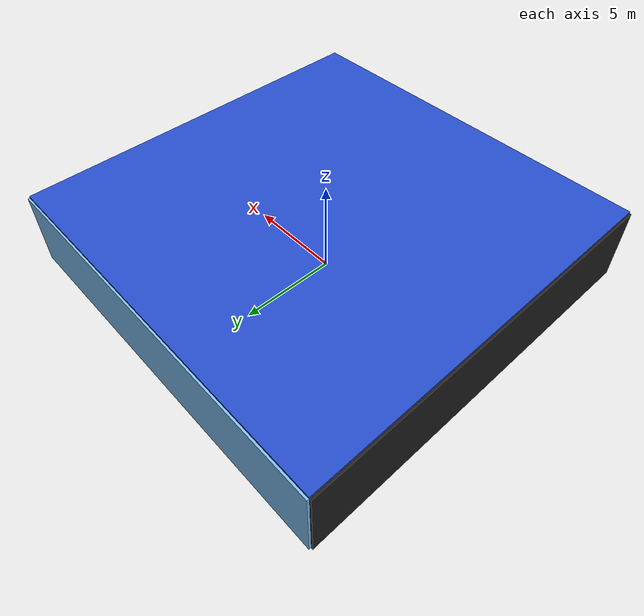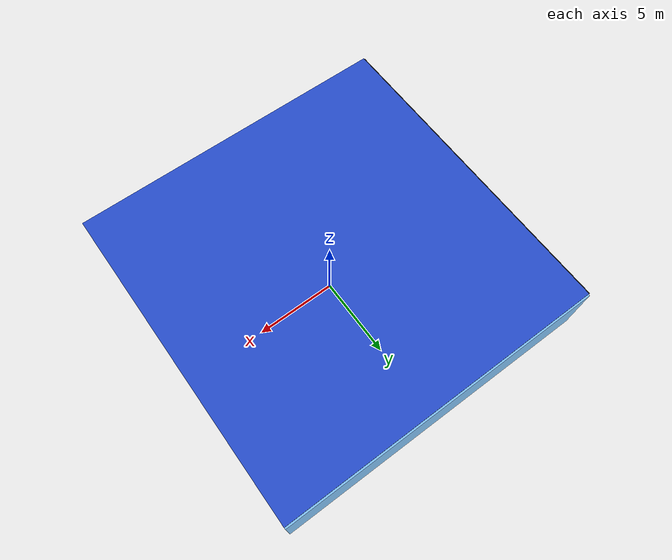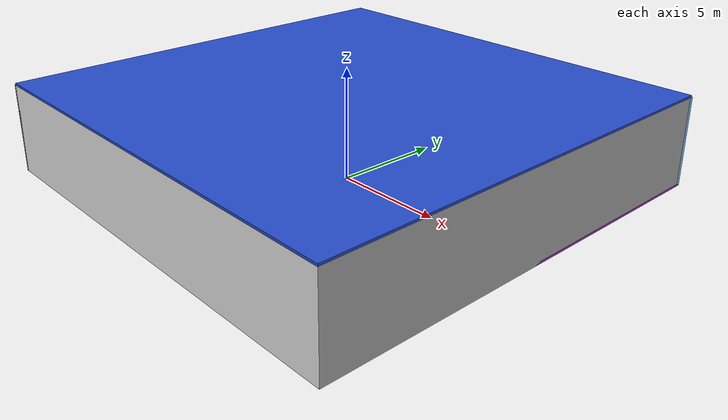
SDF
<sdf version="1.4">
 <world name="default">
  <physics type="ode">
   <max_step_size>0.001</max_step_size>
   <real_time_factor>1</real_time_factor>
   <real_time_update_rate>1000</real_time_update_rate>
   <gravity>0 0 -9.8</gravity>
  </physics>
  <scene><ambient>0.4 0.4 0.4 1</ambient><background>0.7 0.7 0.7 1</background><shadows>1</shadows></scene>
  <model name="Surrounding">
   <static>1</static>
   <link name="Ceiling">
    <collision name="Ceiling_Collision"><geometry><box><size>20 20 0.1</size></box></geometry></collision>
    <visual name="Ceiling_Visual">
     <geometry><box><size>20 20 0.1</size></box></geometry>
     <material>
      <script><uri>file://media/materials/scripts/gazebo.material</uri><name>Gazebo/BlueLaser</name></script>
     </material>
    </visual>
    <pose>0 0 4.05 0 0 0</pose>
   </link>
   <link name="Wall_South">
    <collision name="Wall_South_Collision">
     <geometry><box><size>20 0 4</size></box></geometry>
     <pose>0 0 2 0 -0 0</pose>
    </collision>
    <visual name="Wall_South_Visual">
     <pose>0 0 2 0 -0 0</pose>
     <geometry><box><size>20 0 4</size></box></geometry>
     <material>
      <script><uri>file://media/materials/scripts/gazebo.material</uri><name>Gazebo/White</name></script>
     </material>
    </visual>
    <velocity_decay><linear>0</linear><angular>0</angular></velocity_decay>
    <pose>0 -10 0 0 -0 0</pose>
   </link>
   <link name="Wall_East">
    <collision name="Wall_21_Collision">
     <geometry><box><size>20 0 4</size></box></geometry>
     <pose>0 0 2 0 -0 0</pose>
    </collision>
    <visual name="Wall_21_Visual">
     <pose>0 0 2 0 -0 0</pose>
     <geometry><box><size>20 0 4</size></box></geometry>
     <material>
      <script><uri>file://media/materials/scripts/gazebo.material</uri><name>Gazebo/Pioneer2Body</name></script>
     </material>
    </visual>
    <velocity_decay><linear>0</linear><angular>0</angular></velocity_decay>
    <pose>10 0 0 0 -0 1.5708</pose>
   </link>
   <link name="Wall_North">
    <collision name="Wall_22_Collision">
     <geometry><box><size>20 0.2 4</size></box></geometry>
     <pose>0 0 2 0 -0 0</pose>
    </collision>
    <visual name="Wall_22_Visual">
     <pose>0 0 2 0 -0 0</pose>
     <geometry><box><size>20 0.2 4</size></box></geometry>
     <material>
      <script><uri>file://media/materials/scripts/gazebo.material</uri><name>Gazebo/SkyBlue</name></script>
     </material>
    </visual>
    <velocity_decay><linear>0</linear><angular>0</angular></velocity_decay>
    <pose>0 10 0 0 -0 0</pose>
   </link>
   <link name="Wall_West">
    <collision name="Wall_23_Collision">
     <geometry><box><size>20 0.2 4</size></box></geometry>
     <pose>0 0 2 0 -0 0</pose>
    </collision>
    <visual name="Wall_23_Visual">
     <pose>0 0 2 0 -0 0</pose>
     <geometry><box><size>20 0.2 4</size></box></geometry>
     <material>
      <script><uri>file://media/materials/scripts/gazebo.material</uri><name>Gazebo/Black</name></script>
     </material>
    </visual>
    <velocity_decay><linear>0</linear><angular>0</angular></velocity_decay>
    <pose>-10 0 0 0 0 -1.5708</pose>
   </link>
   <link name="Ground_link">
    <collision name="collision">
     <pose>0 0 .05 0 -0 0</pose>
     <geometry><box><size>20 20 0.1</size></box></geometry>
    </collision>
    <visual name="visual">
     <pose>0 0 .05 0 -0 0</pose>
     <geometry><box><size>20 20 0.1</size></box></geometry>
     <material>
      <script><uri>file://media/materials/scripts/gazebo.material</uri><name>Gazebo/PurpleGlow</name></script>
     </material>
    </visual>
   </link>
   <static>1</static>
  </model>
  <spherical_coordinates>
   <surface_model>EARTH_WGS84</surface_model>
   <latitude_deg>0</latitude_deg>
   <longitude_deg>0</longitude_deg>
   <elevation>0</elevation>
   <heading_deg>0</heading_deg>
  </spherical_coordinates>
  <light name="lightball_0" type="diffuse">
   <diffuse>0.8 0.8 0.8 1</diffuse>
   <specular>0.2 0.2 0.2 1</specular>
   <attenuation>
    <range>100</range>
    <constant>0.7</constant>
    <linear>0.01</linear>
    <quadratic>0.001</quadratic>
   </attenuation>
   <direction>-0.5 0.1 -0.9</direction>
   <pose>0.839377637789 -2.30102506127 2.38728281746 0 0 0</pose>
  </light>
  <light name="lightball_1" type="diffuse">
   <diffuse>0.8 0.8 0.8 1</diffuse>
   <specular>0.2 0.2 0.2 1</specular>
   <attenuation>
    <range>100</range>
    <constant>0.7</constant>
    <linear>0.01</linear>
    <quadratic>0.001</quadratic>
   </attenuation>
   <direction>-0.5 0.1 -0.9</direction>
   <pose>-5.2990431176 8.31423975938 0.66995436483 0 0 0</pose>
  </light>
  <light name="lightball_2" type="diffuse">
   <diffuse>0.8 0.8 0.8 1</diffuse>
   <specular>0.2 0.2 0.2 1</specular>
   <attenuation>
    <range>100</range>
    <constant>0.7</constant>
    <linear>0.01</linear>
    <quadratic>0.001</quadratic>
   </attenuation>
   <direction>-0.5 0.1 -0.9</direction>
   <pose>5.20678671212 3.78282296999 1.11743053947 0 0 0</pose>
  </light>
  <light name="lightball_3" type="diffuse">
   <diffuse>0.8 0.8 0.8 1</diffuse>
   <specular>0.2 0.2 0.2 1</specular>
   <attenuation>
    <range>100</range>
    <constant>0.7</constant>
    <linear>0.01</linear>
    <quadratic>0.001</quadratic>
   </attenuation>
   <direction>-0.5 0.1 -0.9</direction>
   <pose>-6.2592947529 -9.6202683942 0.955678363595 0 0 0</pose>
  </light>
  <light name="lightball_4" type="diffuse">
   <diffuse>0.8 0.8 0.8 1</diffuse>
   <specular>0.2 0.2 0.2 1</specular>
   <attenuation>
    <range>100</range>
    <constant>0.7</constant>
    <linear>0.01</linear>
    <quadratic>0.001</quadratic>
   </attenuation>
   <direction>-0.5 0.1 -0.9</direction>
   <pose>-1.61139005959 1.12523878654 2.19238123287 0 0 0</pose>
  </light>
  <light name="lightball_5" type="diffuse">
   <diffuse>0.8 0.8 0.8 1</diffuse>
   <specular>0.2 0.2 0.2 1</specular>
   <attenuation>
    <range>100</range>
    <constant>0.7</constant>
    <linear>0.01</linear>
    <quadratic>0.001</quadratic>
   </attenuation>
   <direction>-0.5 0.1 -0.9</direction>
   <pose>9.20799305023 -6.29338470252 1.49697025596 0 0 0</pose>
  </light>
  <light name="lightball_6" type="diffuse">
   <diffuse>0.8 0.8 0.8 1</diffuse>
   <specular>0.2 0.2 0.2 1</specular>
   <attenuation>
    <range>100</range>
    <constant>0.7</constant>
    <linear>0.01</linear>
    <quadratic>0.001</quadratic>
   </attenuation>
   <direction>-0.5 0.1 -0.9</direction>
   <pose>-6.94646319093 1.35474064911 1.4356872714 0 0 0</pose>
  </light>
  <include><uri>model://cabinet</uri><pose>-7.41835537541 1.83569805538 0 0 0 1.50820126175</pose></include>
  <include><uri>model://table</uri><pose>-7.77977512414 7.42895566308 0 0 0 1.29787064457</pose></include>
  <include><uri>model://table</uri><pose>-4.43889034181 2.43292652165 0 0 0 1.81250165329</pose></include>
  <include><uri>model://cabinet</uri><pose>0.647442480816 2.39195250968 0 0 0 1.03643085014</pose></include>
  <include>
   <uri>model://textured_shapes</uri>
   <pose>1.66415369977 4.6471055777 0 0 0 2.22845671879</pose>
  </include>
  <include>
   <uri>model://construction_cone</uri>
   <pose>5.13111761514 -5.66187102467 0 0 0 2.80487418448</pose>
  </include>
  <include><uri>model://cabinet</uri><pose>4.8787910828 -0.883205831334 0 0 0 2.3736097635</pose></include>
 </world>
</sdf>

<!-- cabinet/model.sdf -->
<sdf version="1.5">
  <model name="cabinet">
    <static>true</static>
    <link name="cabinet_bottom_plate">
      <inertial>
        <pose>0 0 -1 0 0 0</pose>
        <inertia>
          <ixx>2.050000</ixx>
          <ixy>0</ixy>
          <ixz>0</ixz>
          <iyy>2.050000</iyy>
          <iyz>0</iyz>
          <izz>2.050000</izz>
        </inertia>
        <mass>25.000000</mass>
      </inertial>
      <collision name="cabinet_bottom_plate_geom">
        <pose>0 0 0.010000 0 0 0</pose>
        <geometry>
          <box>
            <size>0.450000 0.450000 0.020000</size>
          </box>
        </geometry>
      </collision>
      <visual name="cabinet_bottom_plate_geom_visual">
        <pose>0 0 0.010000 0 0 0</pose>
        <geometry>
          <box>
            <size>0.450000 0.450000 0.020000</size>
          </box>
        </geometry>
        <material>
          <script>
            <uri>model://media/materials/scripts/gazebo.material</uri>
            <name>Gazebo/Wood</name>
          </script>
        </material>
      </visual>
      <collision name="cabinet_bottom_plate_geom_cabinet_back_plate">
        <pose>0.235000 0 0.510000 0 0 0</pose>
        <geometry>
          <box>
            <size>0.020000 0.450000 1.020000</size>
          </box>
        </geometry>
      </collision>
      <visual name="cabinet_bottom_plate_geom_cabinet_back_plate_visual">
        <pose>0.235000 0 0.510000 0 0 0</pose>
        <geometry>
          <box>
            <size>0.020000 0.450000 1.020000</size>
          </box>
        </geometry>
        <material>
          <script>
            <uri>model://media/materials/scripts/gazebo.material</uri>
            <name>Gazebo/Wood</name>
          </script>
        </material>
      </visual>
      <collision name="cabinet_bottom_plate_geom_cabinet_left_plate">
        <pose>0 0.235000 0.510000 0 0 0</pose>
        <geometry>
          <box>
            <size>0.450000 0.020000 1.020000</size>
          </box>
        </geometry>
      </collision>
      <visual name="cabinet_bottom_plate_geom_cabinet_left_plate_visual">
        <pose>0 0.235000 0.510000 0 0 0</pose>
        <geometry>
          <box>
            <size>0.450000 0.020000 1.020000</size>
          </box>
        </geometry>
        <material>
          <script>
            <uri>model://media/materials/scripts/gazebo.material</uri>
            <name>Gazebo/Wood</name>
          </script>
        </material>
      </visual>
      <collision name="cabinet_bottom_plate_geom_cabinet_middle_plate">
        <pose>0 0 0.510000 0 0 0</pose>
        <geometry>
          <box>
            <size>0.450000 0.450000 0.020000</size>
          </box>
        </geometry>
      </collision>
      <visual name="cabinet_bottom_plate_geom_cabinet_middle_plate_visual">
        <pose>0 0 0.510000 0 0 0</pose>
        <geometry>
          <box>
            <size>0.450000 0.450000 0.020000</size>
          </box>
        </geometry>
        <material>
          <script>
            <uri>model://media/materials/scripts/gazebo.material</uri>
            <name>Gazebo/Wood</name>
          </script>
        </material>
      </visual>
      <collision name="cabinet_bottom_plate_geom_cabinet_right_plate">
        <pose>0 -0.235000 0.510000 0 0 0</pose>
        <geometry>
          <box>
            <size>0.450000 0.020000 1.020000</size>
          </box>
        </geometry>
      </collision>
      <visual name="cabinet_bottom_plate_geom_cabinet_right_plate_visual">
        <pose>0 -0.235000 0.510000 0 0 0</pose>
        <geometry>
          <box>
            <size>0.450000 0.020000 1.020000</size>
          </box>
        </geometry>
        <material>
          <script>
            <uri>model://media/materials/scripts/gazebo.material</uri>
            <name>Gazebo/Wood</name>
          </script>
        </material>
      </visual>
      <collision name="cabinet_bottom_plate_geom_cabinet_top_plate">
        <pose>0 0 1.010000 0 0 0</pose>
        <geometry>
          <box>
            <size>0.450000 0.450000 0.020000</size>
          </box>
        </geometry>
      </collision>
      <visual name="cabinet_bottom_plate_geom_cabinet_top_plate_visual">
        <pose>0 0 1.010000 0 0 0</pose>
        <geometry>
          <box>
            <size>0.450000 0.450000 0.020000</size>
          </box>
        </geometry>
        <material>
          <script>
            <uri>model://media/materials/scripts/gazebo.material</uri>
            <name>Gazebo/Wood</name>
          </script>
        </material>
      </visual>
    </link>
  </model>
</sdf>

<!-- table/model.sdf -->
<sdf version="1.5">
  <model name="table">
    <static>true</static>
    <link name="link">
      <collision name="surface">
        <pose>0 0 1.0 0 0 0</pose>
        <geometry>
          <box>
            <size>1.5 0.8 0.03</size>
          </box>
        </geometry>
        <surface>
          <friction>
            <ode>
              <mu>0.6</mu>
              <mu2>0.6</mu2>
            </ode>
          </friction>
        </surface>
      </collision>
      <visual name="visual1">
        <pose>0 0 1.0 0 0 0</pose>
        <geometry>
          <box>
            <size>1.5 0.8 0.03</size>
          </box>
        </geometry>
        <material>
          <script>
            <uri>model://media/materials/scripts/gazebo.material</uri>
            <name>Gazebo/Wood</name>
          </script>
        </material>
      </visual>
      <collision name="front_left_leg">
        <pose>0.68 0.38 0.5 0 0 0</pose>
        <geometry>
          <cylinder>
            <radius>0.02</radius>
            <length>1.0</length>
          </cylinder>
        </geometry>
      </collision>
      <visual name="front_left_leg">
        <pose>0.68 0.38 0.5 0 0 0</pose>
        <geometry>
          <cylinder>
            <radius>0.02</radius>
            <length>1.0</length>
          </cylinder>
        </geometry>
        <material>
          <script>
            <uri>model://media/materials/scripts/gazebo.material</uri>
            <name>Gazebo/Grey</name>
          </script>
        </material>
      </visual>
      <collision name="front_right_leg">
        <pose>0.68 -0.38 0.5 0 0 0</pose>
        <geometry>
          <cylinder>
            <radius>0.02</radius>
            <length>1.0</length>
          </cylinder>
        </geometry>
      </collision>
      <visual name="front_right_leg">
        <pose>0.68 -0.38 0.5 0 0 0</pose>
        <geometry>
          <cylinder>
            <radius>0.02</radius>
            <length>1.0</length>
          </cylinder>
        </geometry>
        <material>
          <script>
            <uri>model://media/materials/scripts/gazebo.material</uri>
            <name>Gazebo/Grey</name>
          </script>
        </material>
      </visual>
      <collision name="back_right_leg">
        <pose>-0.68 -0.38 0.5 0 0 0</pose>
        <geometry>
          <cylinder>
            <radius>0.02</radius>
            <length>1.0</length>
          </cylinder>
        </geometry>
      </collision>
      <visual name="back_right_leg">
        <pose>-0.68 -0.38 0.5 0 0 0</pose>
        <geometry>
          <cylinder>
            <radius>0.02</radius>
            <length>1.0</length>
          </cylinder>
        </geometry>
        <material>
          <script>
            <uri>model://media/materials/scripts/gazebo.material</uri>
            <name>Gazebo/Grey</name>
          </script>
        </material>
      </visual>
      <collision name="back_left_leg">
        <pose>-0.68 0.38 0.5 0 0 0</pose>
        <geometry>
          <cylinder>
            <radius>0.02</radius>
            <length>1.0</length>
          </cylinder>
        </geometry>
      </collision>
      <visual name="back_left_leg">
        <pose>-0.68 0.38 0.5 0 0 0</pose>
        <geometry>
          <cylinder>
            <radius>0.02</radius>
            <length>1.0</length>
          </cylinder>
        </geometry>
        <material>
          <script>
            <uri>model://media/materials/scripts/gazebo.material</uri>
            <name>Gazebo/Grey</name>
          </script>
        </material>
      </visual>
    </link>
  </model>
</sdf>

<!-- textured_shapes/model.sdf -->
<sdf version="1.6">
  <model name="textured_shapes">
    <pose>0 0 0.5 0 0 0</pose>
    <link name="box">
      <pose>0 -1.5 0 0 0 0</pose>
      <collision name="collision">
        <geometry>
          <box>
            <size>1 1 1</size>
          </box>
        </geometry>
      </collision>
      <visual name="visual">
        <geometry>
          <box>
            <size>1 1 1</size>
          </box>
        </geometry>
        <material>
          <script>
            <uri>model://../model_source/models/textured_shapes/materials/scripts</uri>
            <uri>model://../model_source/models/textured_shapes/materials/textures</uri>
            <name>TexturedShape/Squares</name>
          </script>
        </material>
      </visual>
    </link>
    <link name="sphere">
      <collision name="collision">
        <geometry>
          <sphere>
            <radius>0.5</radius>
          </sphere>
        </geometry>
      </collision>
      <visual name="visual">
        <geometry>
          <sphere>
            <radius>0.5</radius>
          </sphere>
        </geometry>
        <material>
          <script>
            <uri>model://../model_source/models/textured_shapes/materials/scripts</uri>
            <uri>model://../model_source/models/textured_shapes/materials/textures</uri>
            <name>TexturedShape/Squares</name>
          </script>
        </material>
      </visual>
    </link>
    <link name="cylinder">
      <pose>0 1.5 0 0 0 0</pose>
      <collision name="collision">
        <geometry>
          <cylinder>
            <radius>0.5</radius>
            <length>1</length>
          </cylinder>
        </geometry>
      </collision>
      <visual name="visual">
        <geometry>
          <cylinder>
            <radius>0.5</radius>
            <length>1</length>
          </cylinder>
        </geometry>
        <material>
          <script>
            <uri>model://../model_source/models/textured_shapes/materials/scripts</uri>
            <uri>model://../model_source/models/textured_shapes/materials/textures</uri>
            <name>TexturedShape/Squares</name>
          </script>
        </material>
      </visual>
    </link>
  </model>
</sdf>

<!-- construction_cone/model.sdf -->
<sdf version="1.5">
  <model name="Construction Cone">
    <link name="link">
      <collision name="collision">
        <geometry>
          <mesh>
            <scale>10 10 10</scale>
            <uri>file://isr-testbed/construction_cone/meshes/construction_cone.dae</uri>
          </mesh>
        </geometry>
      </collision>
      <visual name="visual">
        <geometry>
          <mesh>
            <scale>10 10 10</scale>
            <uri>file://isr-testbed/construction_cone/meshes/construction_cone.dae</uri>
          </mesh>
        </geometry>
      </visual>
    </link>
  </model>
</sdf>
